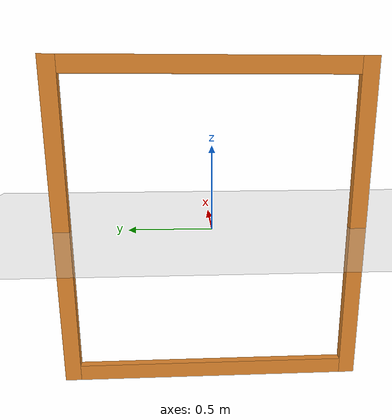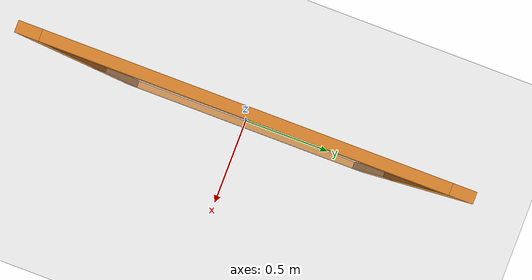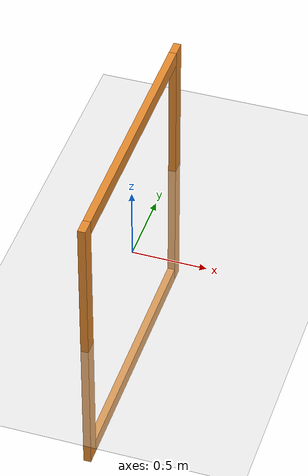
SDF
<sdf version="1.4">
 <world name="smart_drone_simple_world">
  <include><uri>model://ground_plane</uri></include>
  <include><uri>model://sun</uri></include>
  <model name="smart_drone_orange_gate8">
   <link name="left">
    <pose>0 -0.9 0 0 -0 0</pose>
    <inertial>
     <mass>1</mass>
     <inertia>
      <ixx>0.166667</ixx>
      <ixy>0</ixy>
      <ixz>0</ixz>
      <iyy>0.166667</iyy>
      <iyz>0</iyz>
      <izz>0.166667</izz>
     </inertia>
     <pose>0 -0.9 0 0 -0 0</pose>
    </inertial>
    <visual name="visual">
     <geometry><box><size>0.05 0.1 2</size></box></geometry>
     <material>
      <lighting>1</lighting>
      <script><uri>file://media/materials/scripts/gazebo.material</uri><name>Gazebo/Grey</name></script>
      <shader type="pixel"><normal_map>__default__</normal_map></shader>
      <ambient>0.9 0.54 0.18 1</ambient>
      <diffuse>0.9 0.54 0.18 1</diffuse>
      <specular>0.9 0.54 0.18 1</specular>
      <emissive>0 0 0 1</emissive>
     </material>
    </visual>
    <collision name="collision">
     <geometry><box><size>0.05 0.1 2</size></box></geometry>
     <surface>
      <friction>
       <ode><mu>1</mu><mu2>1</mu2><fdir1>0 0 0</fdir1><slip1>0</slip1><slip2>0</slip2></ode>
       <torsional>
        <coefficient>1</coefficient>
        <patch_radius>0</patch_radius>
        <surface_radius>0</surface_radius>
        <use_patch_radius>1</use_patch_radius>
        <ode><slip>0</slip></ode>
       </torsional>
      </friction>
      <bounce><restitution_coefficient>0</restitution_coefficient><threshold>1e+06</threshold></bounce>
      <contact>
       <collide_without_contact>0</collide_without_contact>
       <collide_without_contact_bitmask>1</collide_without_contact_bitmask>
       <collide_bitmask>1</collide_bitmask>
       <ode>
        <soft_cfm>0</soft_cfm>
        <soft_erp>0.2</soft_erp>
        <kp>1e+13</kp>
        <kd>1</kd>
        <max_vel>0.01</max_vel>
        <min_depth>0</min_depth>
       </ode>
       <bullet>
        <split_impulse>1</split_impulse>
        <split_impulse_penetration_threshold>-0.01</split_impulse_penetration_threshold>
        <soft_cfm>0</soft_cfm>
        <soft_erp>0.2</soft_erp>
        <kp>1e+13</kp>
        <kd>1</kd>
       </bullet>
      </contact>
     </surface>
    </collision>
   </link>
   <link name="top">
    <pose>0 0 0.95 0 -0 0</pose>
    <inertial>
     <mass>1</mass>
     <inertia>
      <ixx>0.166667</ixx>
      <ixy>0</ixy>
      <ixz>0</ixz>
      <iyy>0.166667</iyy>
      <iyz>0</iyz>
      <izz>0.166667</izz>
     </inertia>
     <pose>0 0 0.95 0 -0 0</pose>
    </inertial>
    <visual name="visual">
     <geometry><box><size>0.05 1.7 0.1</size></box></geometry>
     <material>
      <lighting>1</lighting>
      <script><uri>file://media/materials/scripts/gazebo.material</uri><name>Gazebo/Grey</name></script>
      <shader type="pixel"><normal_map>__default__</normal_map></shader>
      <ambient>0.9 0.54 0.18 1</ambient>
      <diffuse>0.9 0.54 0.18 1</diffuse>
      <specular>0.9 0.54 0.18 1</specular>
      <emissive>0 0 0 1</emissive>
     </material>
    </visual>
    <collision name="collision">
     <geometry><box><size>0.05 1.7 0.1</size></box></geometry>
     <surface>
      <friction>
       <ode><mu>1</mu><mu2>1</mu2><fdir1>0 0 0</fdir1><slip1>0</slip1><slip2>0</slip2></ode>
       <torsional>
        <coefficient>1</coefficient>
        <patch_radius>0</patch_radius>
        <surface_radius>0</surface_radius>
        <use_patch_radius>1</use_patch_radius>
        <ode><slip>0</slip></ode>
       </torsional>
      </friction>
      <bounce><restitution_coefficient>0</restitution_coefficient><threshold>1e+06</threshold></bounce>
      <contact>
       <collide_without_contact>0</collide_without_contact>
       <collide_without_contact_bitmask>1</collide_without_contact_bitmask>
       <collide_bitmask>1</collide_bitmask>
       <ode>
        <soft_cfm>0</soft_cfm>
        <soft_erp>0.2</soft_erp>
        <kp>1e+13</kp>
        <kd>1</kd>
        <max_vel>0.01</max_vel>
        <min_depth>0</min_depth>
       </ode>
       <bullet>
        <split_impulse>1</split_impulse>
        <split_impulse_penetration_threshold>-0.01</split_impulse_penetration_threshold>
        <soft_cfm>0</soft_cfm>
        <soft_erp>0.2</soft_erp>
        <kp>1e+13</kp>
        <kd>1</kd>
       </bullet>
      </contact>
     </surface>
    </collision>
   </link>
   <link name="bot">
    <pose>0 0 -0.95 0 -0 0</pose>
    <inertial>
     <mass>1</mass>
     <inertia>
      <ixx>0.166667</ixx>
      <ixy>0</ixy>
      <ixz>0</ixz>
      <iyy>0.166667</iyy>
      <iyz>0</iyz>
      <izz>0.166667</izz>
     </inertia>
     <pose>0 0 -0.95 0 -0 0</pose>
    </inertial>
    <visual name="visual">
     <geometry><box><size>0.05 1.7 0.1</size></box></geometry>
     <material>
      <lighting>1</lighting>
      <script><uri>file://media/materials/scripts/gazebo.material</uri><name>Gazebo/Grey</name></script>
      <shader type="pixel"><normal_map>__default__</normal_map></shader>
      <ambient>0.9 0.54 0.18 1</ambient>
      <diffuse>0.9 0.54 0.18 1</diffuse>
      <specular>0.9 0.54 0.18 1</specular>
      <emissive>0 0 0 1</emissive>
     </material>
    </visual>
    <collision name="collision">
     <geometry><box><size>0.05 1.7 0.1</size></box></geometry>
     <surface>
      <friction>
       <ode><mu>1</mu><mu2>1</mu2><fdir1>0 0 0</fdir1><slip1>0</slip1><slip2>0</slip2></ode>
       <torsional>
        <coefficient>1</coefficient>
        <patch_radius>0</patch_radius>
        <surface_radius>0</surface_radius>
        <use_patch_radius>1</use_patch_radius>
        <ode><slip>0</slip></ode>
       </torsional>
      </friction>
      <bounce><restitution_coefficient>0</restitution_coefficient><threshold>1e+06</threshold></bounce>
      <contact>
       <collide_without_contact>0</collide_without_contact>
       <collide_without_contact_bitmask>1</collide_without_contact_bitmask>
       <collide_bitmask>1</collide_bitmask>
       <ode>
        <soft_cfm>0</soft_cfm>
        <soft_erp>0.2</soft_erp>
        <kp>1e+13</kp>
        <kd>1</kd>
        <max_vel>0.01</max_vel>
        <min_depth>0</min_depth>
       </ode>
       <bullet>
        <split_impulse>1</split_impulse>
        <split_impulse_penetration_threshold>-0.01</split_impulse_penetration_threshold>
        <soft_cfm>0</soft_cfm>
        <soft_erp>0.2</soft_erp>
        <kp>1e+13</kp>
        <kd>1</kd>
       </bullet>
      </contact>
     </surface>
    </collision>
   </link>
   <link name="right">
    <pose>0 0.9 0 0 -0 0</pose>
    <inertial>
     <mass>1</mass>
     <inertia>
      <ixx>0.166667</ixx>
      <ixy>0</ixy>
      <ixz>0</ixz>
      <iyy>0.166667</iyy>
      <iyz>0</iyz>
      <izz>0.166667</izz>
     </inertia>
     <pose>0 0.9 0 0 -0 0</pose>
    </inertial>
    <visual name="visual">
     <geometry><box><size>0.05 0.1 2</size></box></geometry>
     <material>
      <lighting>1</lighting>
      <script><uri>file://media/materials/scripts/gazebo.material</uri><name>Gazebo/Grey</name></script>
      <shader type="pixel"><normal_map>__default__</normal_map></shader>
      <ambient>0.9 0.54 0.18 1</ambient>
      <diffuse>0.9 0.54 0.18 1</diffuse>
      <specular>0.9 0.54 0.18 1</specular>
      <emissive>0 0 0 1</emissive>
     </material>
    </visual>
    <collision name="collision">
     <geometry><box><size>0.05 0.1 2</size></box></geometry>
     <surface>
      <friction>
       <ode><mu>1</mu><mu2>1</mu2><fdir1>0 0 0</fdir1><slip1>0</slip1><slip2>0</slip2></ode>
       <torsional>
        <coefficient>1</coefficient>
        <patch_radius>0</patch_radius>
        <surface_radius>0</surface_radius>
        <use_patch_radius>1</use_patch_radius>
        <ode><slip>0</slip></ode>
       </torsional>
      </friction>
      <bounce><restitution_coefficient>0</restitution_coefficient><threshold>1e+06</threshold></bounce>
      <contact>
       <collide_without_contact>0</collide_without_contact>
       <collide_without_contact_bitmask>1</collide_without_contact_bitmask>
       <collide_bitmask>1</collide_bitmask>
       <ode>
        <soft_cfm>0</soft_cfm>
        <soft_erp>0.2</soft_erp>
        <kp>1e+13</kp>
        <kd>1</kd>
        <max_vel>0.01</max_vel>
        <min_depth>0</min_depth>
       </ode>
       <bullet>
        <split_impulse>1</split_impulse>
        <split_impulse_penetration_threshold>-0.01</split_impulse_penetration_threshold>
        <soft_cfm>0</soft_cfm>
        <soft_erp>0.2</soft_erp>
        <kp>1e+13</kp>
        <kd>1</kd>
       </bullet>
      </contact>
     </surface>
    </collision>
   </link>
   <static>1</static>
  </model>
 </world>
</sdf>
